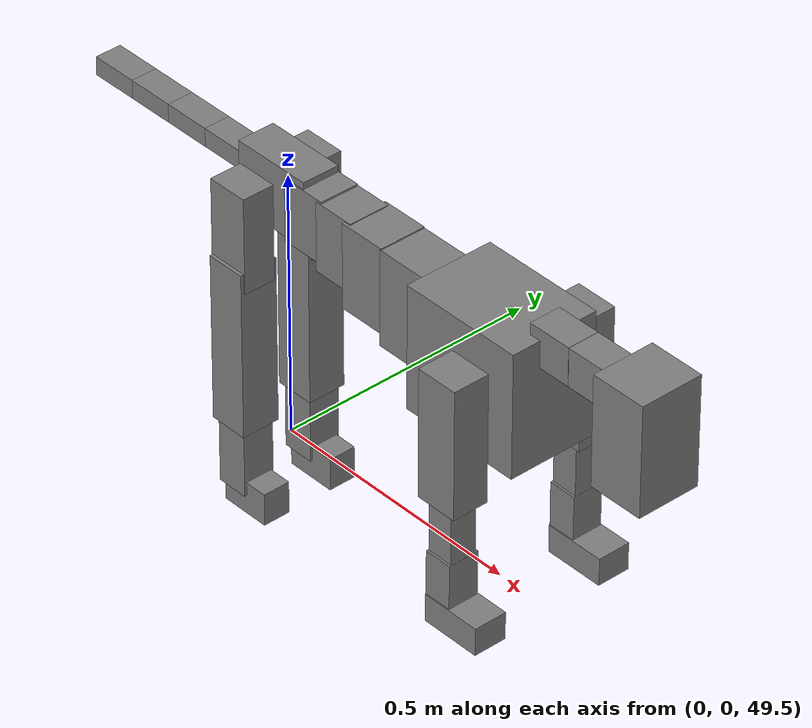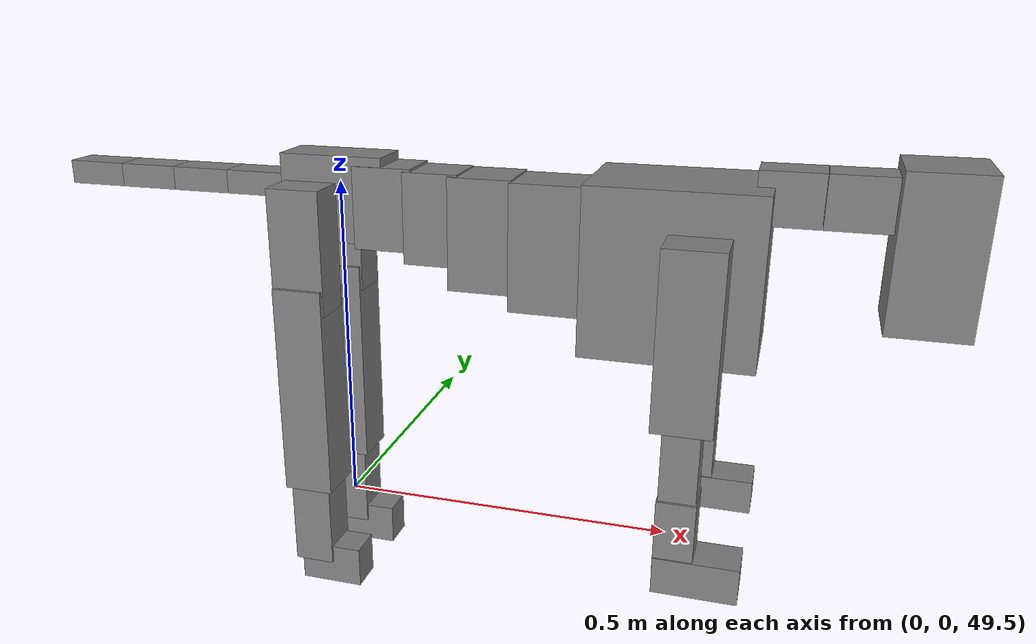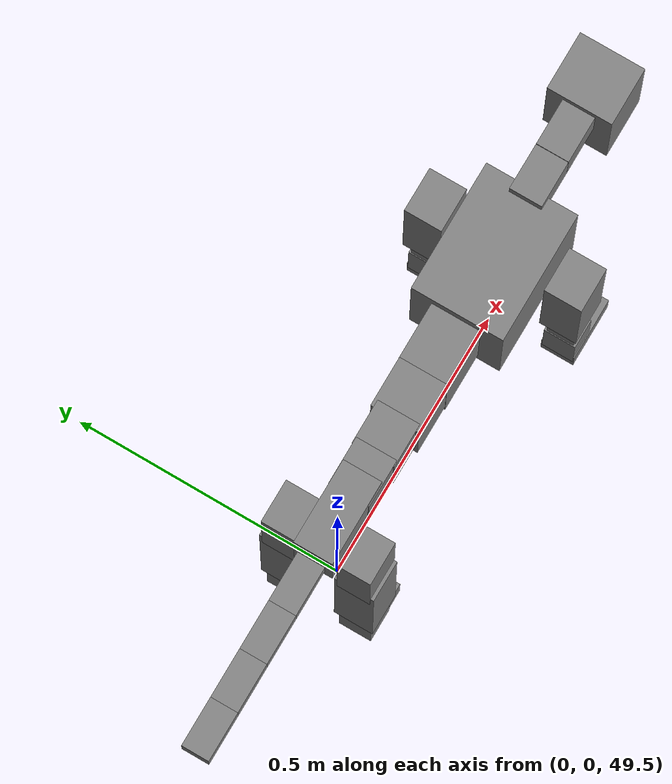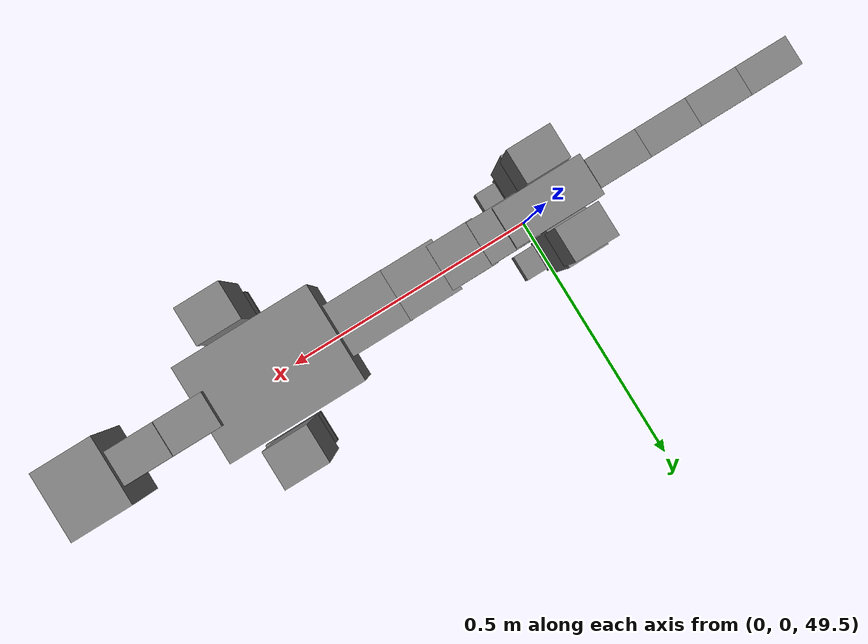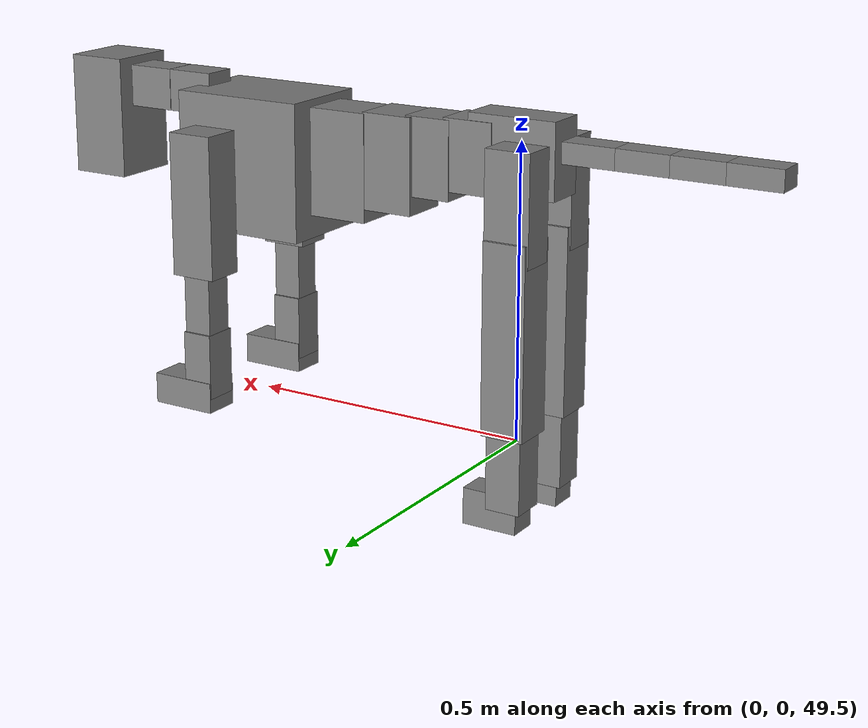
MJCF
<mujoco model="dog">

    <default>
        <joint armature="0.02" stiffness="1" damping="0.2" limited="true"/>
        <geom condim="3" friction="1 0.05 0.05" margin="0.01"/>
        <motor ctrllimited="true" ctrlrange="-1.0 1.0" forcelimited="true" gear="50"/>
    </default>

    <compiler inertiafromgeom="true" angle="radian"/>

    <option timestep="0.016" iterations="50" tolerance="1e-10" solver="Newton" jacobian="dense" cone="pyramidal"/>

    <size nconmax="20000" njmax="60000" nstack="5000000"/>
    <visual>
        <map force="0.1" zfar="30"/>
        <rgba haze="0.15 0.25 0.35 1"/>
        <quality shadowsize="2048"/>
        <global offwidth="800" offheight="800"/>
    </visual>

    <asset>
        <texture type="skybox" builtin="gradient" rgb1="0.3 0.5 0.7" rgb2="0 0 0" width="512" height="512"/>
        <texture name="texplane" type="2d" builtin="checker" rgb1=".2 .3 .4" rgb2=".1 0.15 0.2" width="512" height="512"
                 mark="cross" markrgb=".8 .8 .8"/>
        <texture name="texgeom" type="cube" builtin="flat" mark="cross" width="127" height="1278" rgb1="0.8 0.6 0.4"
                 rgb2="0.8 0.6 0.4" markrgb="1 1 1" random="0.01"/>

        <material name="matplane" reflectance="0.3" texture="texplane" texrepeat="1 1" texuniform="true"/>
        <material name="matgeom" texture="texgeom" texuniform="true" rgba="0.8 0.6 .4 1"/>
    </asset>

    <worldbody>
        <geom name="floor" pos="0 0 0" size="0 0 .25" type="plane" material="matplane" condim="3"/>

        <light directional="false" diffuse=".2 .2 .2" specular="0 0 0" pos="0 0 5" dir="0 0 -1" castshadow="false"/>
        <light mode="targetbodycom" target="torso" directional="false" diffuse=".8 .8 .8" specular="0.3 0.3 0.3"
               pos="0 0 4.0" dir="0 0 -1"/>

        <body name="root" pos="0 0 50">
            <freejoint name="root_1"/>
            <geom type="box" pos="0 0 -0.02" size="0.0774  0.0358  0.063" density="2030"/>

            <body name="spine1" pos="0.054 0 0">
                <joint name="spine1_y" axis="0 1 0" range="0 0.7" limited="true"/>
                <geom type="box" pos="0.02375 0 -0.03" size="0.04375  0.0375  0.05985" density="2030"/>

                <body name="spine2" pos="0.0612 0 0">
                    <joint name="spine2_y" axis="0 1 0" range="-0.15 0.15" limited="true"/>
                    <geom type="box" pos="0.03555  0  -0.04" size="0.04055  0.039  0.06615" density="2030"/>

                    <body name="spine3" pos="0.0730 0 0">
                        <joint name="spine3_y" axis="0 1 0" range="-0.15 0.15" limited="true"/>
                        <geom type="box" pos="0.03555  0  -0.057" size="0.04555  0.0445  0.081" density="2030"/>

                        <body name="spine4" pos="0.0780 0 0">
                            <joint name="spine4_y" axis="0 1 0" range="-0.15 0.15" limited="true"/>
                            <geom type="box" pos="0.05265  0  -0.07" size="0.05265  0.045  0.09135" density="2030"/>

                            <body name="torso" pos="0.1082 0 0">
                                <joint name="torso_y" axis="0 1 0" range="-0.15 0.15" limited="true"/>
                                <geom type="box" pos="0.11925  0  -0.085" size="0.11925  0.085  0.11745"
                                      density="2030"/>

                                <body name="neck1" pos="0.2160  0   0.0180">
                                    <joint name="neck1_y" axis="0 1 0" range="-1.2  -1" limited="true"/>
                                    <geom type="box" pos="0.0423  0  0" size="0.0423  0.03  0.036" density="2325"/>

                                    <body name="neck2" pos="0.0853  0  0">
                                        <joint name="neck2_y" axis="0 1 0" range="0.1  0" limited="true"/>
                                        <geom type="box" pos="0.0423  0  0" size="0.0423  0.03  0.036" density="2325"/>

                                        <body name="head" pos="0.0853  0  0">
                                            <joint name="head_y" axis="0 1 0" range="-0.3  -0.2" limited="true"/>
                                            <geom type="box" pos="0.0531  0  -0.055" size="0.0531  0.06  0.1044"
                                                  density="4030"/>

                                        </body>
                                    </body>
                                </body>

                                <body name="front_shoulder" pos="0.156  0   -0.0480">
                                    <joint name="front_shoulder_y" axis="0 1 0" range="-1 1.5" limited="true"/>
                                    <geom type="box" pos="0 0.13 -0.0954" size="0.0405  0.0346  0.1220" density="1158"/>
                                    <geom type="box" pos="0 -0.13 -0.0954" size="0.0405  0.0346  0.1220"
                                          density="1158"/>

                                    <body name="front_elbow" pos="0  0  -0.1908">
                                        <joint name="front_elbow_y" axis="0 1 0" range="-2 0" limited="true"/>
                                        <geom type="box" pos="0 0.13 -0.0697" size="0.0251  0.0257  0.0697"
                                              density="1081"/>
                                        <geom type="box" pos="0 -0.13 -0.0697" size="0.0251  0.0257  0.0697"
                                              density="1081"/>

                                        <body name="front_wrist" pos="0  0  -0.1394">
                                            <joint name="front_wrist_y" axis="0 1 0" range="-0.2 0" limited="true"/>
                                            <geom type="box" pos="0 0.13 -0.0431" size="0.0267  0.0297  0.0563"
                                                  density="1664"/>
                                            <geom type="box" pos="0 -0.13 -0.0431" size="0.0267  0.0297  0.0563"
                                                  density="1664"/>

                                            <body name="front_finger_end" pos="0  0  -0.0862">
                                                <joint name="front_finger_y" axis="0 1 0" range="-0.4 1"
                                                       limited="true"/>
                                                <geom type="box" pos="0.0314  0.13  -0.0112"
                                                      size="0.0577  0.0314  0.0262" density="1515"/>
                                                <geom type="box" pos="0.0314  -0.13  -0.0112"
                                                      size="0.0577  0.0314  0.0262" density="1515"/>

                                            </body>

                                        </body>
                                    </body>
                                </body>

                            </body>
                        </body>
                    </body>
                </body>
            </body>

            <body name="back_hip" pos="-0.03 0 -0.018">
                <joint name="back_hip_y" axis="0 1 0" range="-1.5 0.3" limited="true"/>
                <geom type="box" pos="0 0.07 -0.0685" size="0.0393  0.0308  0.0913" density="1154"/>
                <geom type="box" pos="0 -0.07 -0.0685" size="0.0393  0.0308  0.0913" density="1154"/>

                <body name="back_knee" pos="0  0  -0.1370">
                    <joint name="back_knee_y" axis="0 1 0" range="0 2.8" limited="true"/>
                    <geom type="box" pos="0 0.07 -0.1440" size="0.0373  0.0368  0.1595" density="1227"/>
                    <geom type="box" pos="0 -0.07 -0.1440" size="0.0373  0.0368  0.1595" density="1227"/>

                    <body name="back_ankle" pos="0  0  -0.2880">
                        <joint name="back_ankle_y" axis="0 1 0" range="-2.2 0" limited="true"/>
                        <geom type="box" pos="0 0.07 -0.0651" size="0.0305  0.0305  0.0763" density="1284"/>
                        <geom type="box" pos="0 -0.07 -0.0651" size="0.0305  0.0305  0.0763" density="1284"/>

                        <body name="back_toe_end" pos="0  0  -0.1302">
                            <joint name="back_toe_y" axis="0 1 0" range="-0.4 1" limited="true"/>
                            <geom type="box" pos="0.0261  0.07  -0.0160" size="0.0479  0.0261  0.0310" density="1515"/>
                            <geom type="box" pos="0.0261  -0.07  -0.0160" size="0.0479  0.0261  0.0310" density="1515"/>

                        </body>
                    </body>
                </body>
            </body>

            <body name="tail1" pos="-0.074 0 -0.006">
                <joint name="tail1_y" axis="0 1 0" range="-0.2 0.2" limited="true"/>
                <geom type="box" pos="-0.0536  0  0" size="0.045  0.025  0.0175" density="1587"/>

                <body name="tail2" pos="-0.09 0 0">
                    <joint name="tail2_y" axis="0 1 0" range="-0.2 0.2" limited="true"/>
                    <geom type="box" pos="-0.0536  0  0" size="0.045  0.025  0.0175" density="1587"/>

                    <body name="tail3" pos="-0.09 0 0">
                        <joint name="tail3_y" axis="0 1 0" range="-0.2 0.2" limited="true"/>
                        <geom type="box" pos="-0.0536  0  0" size="0.045  0.025  0.0175" density="1587"/>

                        <body name="tail4" pos="-0.09 0 0">
                            <joint name="tail4_y" axis="0 1 0" range="-0.2 0.2" limited="true"/>
                            <geom type="box" pos="-0.0536  0  0" size="0.045  0.025  0.0175" density="1587"/>

                        </body>
                    </body>
                </body>
            </body>
        </body>
    </worldbody>

    <actuator>
        <motor joint="spine1_y" forcerange="-150 150     "/>
        <motor joint="spine2_y" forcerange="-150 150     "/>
        <motor joint="spine3_y" forcerange="-150 150     "/>
        <motor joint="spine4_y" forcerange="-150 150     "/>
        <motor joint="torso_y" forcerange="-150 150     "/>
        <motor joint="neck1_y" forcerange="-100 100       "/>
        <motor joint="neck2_y" forcerange="-100 100       "/>
        <motor joint="head_y" forcerange="-150 150       "/>
        <motor joint="front_shoulder_y" forcerange="-174.58 156.29"/>
        <motor joint="front_elbow_y" forcerange="-148.69 138.26"/>
        <motor joint="front_wrist_y" forcerange="-143.70 93.76"/>
        <motor joint="front_finger_y" forcerange="-91.45 36.26"/>
        <motor joint="back_hip_y" forcerange="-235.03 375.73"/>
        <motor joint="back_knee_y" forcerange="-342.04 393.42"/>
        <motor joint="back_angle_y" forcerange="-246.21 141.87"/>
        <motor joint="back_toe_y" forcerange="-29.76 99.38"/>
        <motor joint="tail1_y" forcerange="-50 50     "/>
        <motor joint="tail2_y" forcerange="-50 50     "/>
        <motor joint="tail3_y" forcerange="-50 50     "/>
        <motor joint="tail4_y" forcerange="-50 50     "/>
    </actuator>
</mujoco>
